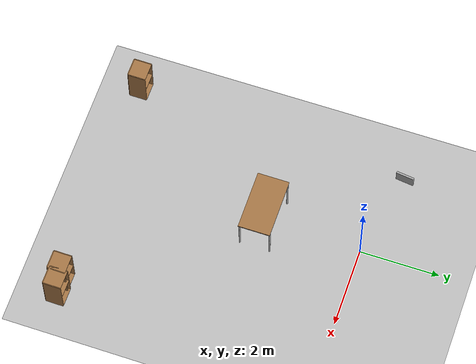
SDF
<sdf version="1.5">
 <world name="default">
  <model name="ground_plane">
   <static>1</static>
   <link name="link">
    <collision name="collision">
     <geometry><plane><normal>0 0 1</normal><size>100 100</size></plane></geometry>
     <surface><friction><ode><mu>100</mu><mu2>50</mu2></ode></friction></surface>
    </collision>
    <visual name="visual">
     <cast_shadows>0</cast_shadows>
     <geometry><plane><normal>0 0 1</normal><size>100 100</size></plane></geometry>
     <material>
      <script><uri>file://media/materials/scripts/gazebo.material</uri><name>Gazebo/Grey</name></script>
     </material>
    </visual>
    <velocity_decay><linear>0</linear><angular>0</angular></velocity_decay>
   </link>
  </model>
  <model name="table">
   <static>1</static>
   <link name="link">
    <collision name="surface">
     <pose>0 0 1 0 -0 0</pose>
     <geometry><box><size>1.5 0.8 0.03</size></box></geometry>
     <surface><friction><ode><mu>0.6</mu><mu2>0.6</mu2></ode></friction></surface>
    </collision>
    <visual name="visual1">
     <pose>0 0 1 0 -0 0</pose>
     <geometry><box><size>1.5 0.8 0.03</size></box></geometry>
     <material>
      <script><uri>file://media/materials/scripts/gazebo.material</uri><name>Gazebo/Wood</name></script>
     </material>
    </visual>
    <collision name="front_left_leg">
     <pose>0.68 0.38 0.5 0 -0 0</pose>
     <geometry><cylinder><radius>0.02</radius><length>1</length></cylinder></geometry>
    </collision>
    <visual name="front_left_leg">
     <pose>0.68 0.38 0.5 0 -0 0</pose>
     <geometry><cylinder><radius>0.02</radius><length>1</length></cylinder></geometry>
     <material>
      <script><uri>file://media/materials/scripts/gazebo.material</uri><name>Gazebo/Grey</name></script>
     </material>
    </visual>
    <collision name="front_right_leg">
     <pose>0.68 -0.38 0.5 0 -0 0</pose>
     <geometry><cylinder><radius>0.02</radius><length>1</length></cylinder></geometry>
    </collision>
    <visual name="front_right_leg">
     <pose>0.68 -0.38 0.5 0 -0 0</pose>
     <geometry><cylinder><radius>0.02</radius><length>1</length></cylinder></geometry>
     <material>
      <script><uri>file://media/materials/scripts/gazebo.material</uri><name>Gazebo/Grey</name></script>
     </material>
    </visual>
    <collision name="back_right_leg">
     <pose>-0.68 -0.38 0.5 0 -0 0</pose>
     <geometry><cylinder><radius>0.02</radius><length>1</length></cylinder></geometry>
    </collision>
    <visual name="back_right_leg">
     <pose>-0.68 -0.38 0.5 0 -0 0</pose>
     <geometry><cylinder><radius>0.02</radius><length>1</length></cylinder></geometry>
     <material>
      <script><uri>file://media/materials/scripts/gazebo.material</uri><name>Gazebo/Grey</name></script>
     </material>
    </visual>
    <collision name="back_left_leg">
     <pose>-0.68 0.38 0.5 0 -0 0</pose>
     <geometry><cylinder><radius>0.02</radius><length>1</length></cylinder></geometry>
    </collision>
    <visual name="back_left_leg">
     <pose>-0.68 0.38 0.5 0 -0 0</pose>
     <geometry><cylinder><radius>0.02</radius><length>1</length></cylinder></geometry>
     <material>
      <script><uri>file://media/materials/scripts/gazebo.material</uri><name>Gazebo/Grey</name></script>
     </material>
    </visual>
    <velocity_decay><linear>0</linear><angular>0</angular></velocity_decay>
   </link>
   <pose>0 -2.45745 0 0 -0 0</pose>
  </model>
  <model name="cabinet_clone_1">
   <static>1</static>
   <link name="cabinet_bottom_plate">
    <inertial>
     <pose>0 0 -1 0 -0 0</pose>
     <inertia><ixx>2.05</ixx><ixy>0</ixy><ixz>0</ixz><iyy>2.05</iyy><iyz>0</iyz><izz>2.05</izz></inertia>
     <mass>25</mass>
    </inertial>
    <collision name="cabinet_bottom_plate_geom">
     <pose>0 0 0.01 0 -0 0</pose>
     <geometry><box><size>0.45 0.45 0.02</size></box></geometry>
    </collision>
    <visual name="cabinet_bottom_plate_geom_visual">
     <pose>0 0 0.01 0 -0 0</pose>
     <geometry><box><size>0.45 0.45 0.02</size></box></geometry>
     <material>
      <script><uri>file://media/materials/scripts/gazebo.material</uri><name>Gazebo/Wood</name></script>
     </material>
    </visual>
    <collision name="cabinet_bottom_plate_geom_cabinet_back_plate">
     <pose>0.235 0 0.51 0 -0 0</pose>
     <geometry><box><size>0.02 0.45 1.02</size></box></geometry>
    </collision>
    <visual name="cabinet_bottom_plate_geom_cabinet_back_plate_visual">
     <pose>0.235 0 0.51 0 -0 0</pose>
     <geometry><box><size>0.02 0.45 1.02</size></box></geometry>
     <material>
      <script><uri>file://media/materials/scripts/gazebo.material</uri><name>Gazebo/Wood</name></script>
     </material>
    </visual>
    <collision name="cabinet_bottom_plate_geom_cabinet_left_plate">
     <pose>0 0.235 0.51 0 -0 0</pose>
     <geometry><box><size>0.45 0.02 1.02</size></box></geometry>
    </collision>
    <visual name="cabinet_bottom_plate_geom_cabinet_left_plate_visual">
     <pose>0 0.235 0.51 0 -0 0</pose>
     <geometry><box><size>0.45 0.02 1.02</size></box></geometry>
     <material>
      <script><uri>file://media/materials/scripts/gazebo.material</uri><name>Gazebo/Wood</name></script>
     </material>
    </visual>
    <collision name="cabinet_bottom_plate_geom_cabinet_middle_plate">
     <pose>0 0 0.51 0 -0 0</pose>
     <geometry><box><size>0.45 0.45 0.02</size></box></geometry>
    </collision>
    <visual name="cabinet_bottom_plate_geom_cabinet_middle_plate_visual">
     <pose>0 0 0.51 0 -0 0</pose>
     <geometry><box><size>0.45 0.45 0.02</size></box></geometry>
     <material>
      <script><uri>file://media/materials/scripts/gazebo.material</uri><name>Gazebo/Wood</name></script>
     </material>
    </visual>
    <collision name="cabinet_bottom_plate_geom_cabinet_right_plate">
     <pose>0 -0.235 0.51 0 -0 0</pose>
     <geometry><box><size>0.45 0.02 1.02</size></box></geometry>
    </collision>
    <visual name="cabinet_bottom_plate_geom_cabinet_right_plate_visual">
     <pose>0 -0.235 0.51 0 -0 0</pose>
     <geometry><box><size>0.45 0.02 1.02</size></box></geometry>
     <material>
      <script><uri>file://media/materials/scripts/gazebo.material</uri><name>Gazebo/Wood</name></script>
     </material>
    </visual>
    <collision name="cabinet_bottom_plate_geom_cabinet_top_plate">
     <pose>0 0 1.01 0 -0 0</pose>
     <geometry><box><size>0.45 0.45 0.02</size></box></geometry>
    </collision>
    <visual name="cabinet_bottom_plate_geom_cabinet_top_plate_visual">
     <pose>0 0 1.01 0 -0 0</pose>
     <geometry><box><size>0.45 0.45 0.02</size></box></geometry>
     <material>
      <script><uri>file://media/materials/scripts/gazebo.material</uri><name>Gazebo/Wood</name></script>
     </material>
    </visual>
    <velocity_decay><linear>0</linear><angular>0</angular></velocity_decay>
   </link>
   <pose>-2.53037 -6.53417 0 0 0 -1.57757</pose>
  </model>
  <model name="cabinet_clone_2">
   <static>1</static>
   <link name="cabinet_bottom_plate">
    <inertial>
     <pose>0 0 -1 0 -0 0</pose>
     <inertia><ixx>2.05</ixx><ixy>0</ixy><ixz>0</ixz><iyy>2.05</iyy><iyz>0</iyz><izz>2.05</izz></inertia>
     <mass>25</mass>
    </inertial>
    <collision name="cabinet_bottom_plate_geom">
     <pose>0 0 0.01 0 -0 0</pose>
     <geometry><box><size>0.45 0.45 0.02</size></box></geometry>
    </collision>
    <visual name="cabinet_bottom_plate_geom_visual">
     <pose>0 0 0.01 0 -0 0</pose>
     <geometry><box><size>0.45 0.45 0.02</size></box></geometry>
     <material>
      <script><uri>file://media/materials/scripts/gazebo.material</uri><name>Gazebo/Wood</name></script>
     </material>
    </visual>
    <collision name="cabinet_bottom_plate_geom_cabinet_back_plate">
     <pose>0.235 0 0.51 0 -0 0</pose>
     <geometry><box><size>0.02 0.45 1.02</size></box></geometry>
    </collision>
    <visual name="cabinet_bottom_plate_geom_cabinet_back_plate_visual">
     <pose>0.235 0 0.51 0 -0 0</pose>
     <geometry><box><size>0.02 0.45 1.02</size></box></geometry>
     <material>
      <script><uri>file://media/materials/scripts/gazebo.material</uri><name>Gazebo/Wood</name></script>
     </material>
    </visual>
    <collision name="cabinet_bottom_plate_geom_cabinet_left_plate">
     <pose>0 0.235 0.51 0 -0 0</pose>
     <geometry><box><size>0.45 0.02 1.02</size></box></geometry>
    </collision>
    <visual name="cabinet_bottom_plate_geom_cabinet_left_plate_visual">
     <pose>0 0.235 0.51 0 -0 0</pose>
     <geometry><box><size>0.45 0.02 1.02</size></box></geometry>
     <material>
      <script><uri>file://media/materials/scripts/gazebo.material</uri><name>Gazebo/Wood</name></script>
     </material>
    </visual>
    <collision name="cabinet_bottom_plate_geom_cabinet_middle_plate">
     <pose>0 0 0.51 0 -0 0</pose>
     <geometry><box><size>0.45 0.45 0.02</size></box></geometry>
    </collision>
    <visual name="cabinet_bottom_plate_geom_cabinet_middle_plate_visual">
     <pose>0 0 0.51 0 -0 0</pose>
     <geometry><box><size>0.45 0.45 0.02</size></box></geometry>
     <material>
      <script><uri>file://media/materials/scripts/gazebo.material</uri><name>Gazebo/Wood</name></script>
     </material>
    </visual>
    <collision name="cabinet_bottom_plate_geom_cabinet_right_plate">
     <pose>0 -0.235 0.51 0 -0 0</pose>
     <geometry><box><size>0.45 0.02 1.02</size></box></geometry>
    </collision>
    <visual name="cabinet_bottom_plate_geom_cabinet_right_plate_visual">
     <pose>0 -0.235 0.51 0 -0 0</pose>
     <geometry><box><size>0.45 0.02 1.02</size></box></geometry>
     <material>
      <script><uri>file://media/materials/scripts/gazebo.material</uri><name>Gazebo/Wood</name></script>
     </material>
    </visual>
    <collision name="cabinet_bottom_plate_geom_cabinet_top_plate">
     <pose>0 0 1.01 0 -0 0</pose>
     <geometry><box><size>0.45 0.45 0.02</size></box></geometry>
    </collision>
    <visual name="cabinet_bottom_plate_geom_cabinet_top_plate_visual">
     <pose>0 0 1.01 0 -0 0</pose>
     <geometry><box><size>0.45 0.45 0.02</size></box></geometry>
     <material>
      <script><uri>file://media/materials/scripts/gazebo.material</uri><name>Gazebo/Wood</name></script>
     </material>
    </visual>
    <velocity_decay><linear>0</linear><angular>0</angular></velocity_decay>
   </link>
   <pose>3.4022 -6.50655 0 0 0 -1.57757</pose>
  </model>
  <model name="cabinet_clone_3">
   <static>1</static>
   <link name="cabinet_bottom_plate">
    <inertial>
     <pose>0 0 -1 0 -0 0</pose>
     <inertia><ixx>2.05</ixx><ixy>0</ixy><ixz>0</ixz><iyy>2.05</iyy><iyz>0</iyz><izz>2.05</izz></inertia>
     <mass>25</mass>
    </inertial>
    <collision name="cabinet_bottom_plate_geom">
     <pose>0 0 0.01 0 -0 0</pose>
     <geometry><box><size>0.45 0.45 0.02</size></box></geometry>
    </collision>
    <visual name="cabinet_bottom_plate_geom_visual">
     <pose>0 0 0.01 0 -0 0</pose>
     <geometry><box><size>0.45 0.45 0.02</size></box></geometry>
     <material>
      <script><uri>file://media/materials/scripts/gazebo.material</uri><name>Gazebo/Wood</name></script>
     </material>
    </visual>
    <collision name="cabinet_bottom_plate_geom_cabinet_back_plate">
     <pose>0.235 0 0.51 0 -0 0</pose>
     <geometry><box><size>0.02 0.45 1.02</size></box></geometry>
    </collision>
    <visual name="cabinet_bottom_plate_geom_cabinet_back_plate_visual">
     <pose>0.235 0 0.51 0 -0 0</pose>
     <geometry><box><size>0.02 0.45 1.02</size></box></geometry>
     <material>
      <script><uri>file://media/materials/scripts/gazebo.material</uri><name>Gazebo/Wood</name></script>
     </material>
    </visual>
    <collision name="cabinet_bottom_plate_geom_cabinet_left_plate">
     <pose>0 0.235 0.51 0 -0 0</pose>
     <geometry><box><size>0.45 0.02 1.02</size></box></geometry>
    </collision>
    <visual name="cabinet_bottom_plate_geom_cabinet_left_plate_visual">
     <pose>0 0.235 0.51 0 -0 0</pose>
     <geometry><box><size>0.45 0.02 1.02</size></box></geometry>
     <material>
      <script><uri>file://media/materials/scripts/gazebo.material</uri><name>Gazebo/Wood</name></script>
     </material>
    </visual>
    <collision name="cabinet_bottom_plate_geom_cabinet_middle_plate">
     <pose>0 0 0.51 0 -0 0</pose>
     <geometry><box><size>0.45 0.45 0.02</size></box></geometry>
    </collision>
    <visual name="cabinet_bottom_plate_geom_cabinet_middle_plate_visual">
     <pose>0 0 0.51 0 -0 0</pose>
     <geometry><box><size>0.45 0.45 0.02</size></box></geometry>
     <material>
      <script><uri>file://media/materials/scripts/gazebo.material</uri><name>Gazebo/Wood</name></script>
     </material>
    </visual>
    <collision name="cabinet_bottom_plate_geom_cabinet_right_plate">
     <pose>0 -0.235 0.51 0 -0 0</pose>
     <geometry><box><size>0.45 0.02 1.02</size></box></geometry>
    </collision>
    <visual name="cabinet_bottom_plate_geom_cabinet_right_plate_visual">
     <pose>0 -0.235 0.51 0 -0 0</pose>
     <geometry><box><size>0.45 0.02 1.02</size></box></geometry>
     <material>
      <script><uri>file://media/materials/scripts/gazebo.material</uri><name>Gazebo/Wood</name></script>
     </material>
    </visual>
    <collision name="cabinet_bottom_plate_geom_cabinet_top_plate">
     <pose>0 0 1.01 0 -0 0</pose>
     <geometry><box><size>0.45 0.45 0.02</size></box></geometry>
    </collision>
    <visual name="cabinet_bottom_plate_geom_cabinet_top_plate_visual">
     <pose>0 0 1.01 0 -0 0</pose>
     <geometry><box><size>0.45 0.45 0.02</size></box></geometry>
     <material>
      <script><uri>file://media/materials/scripts/gazebo.material</uri><name>Gazebo/Wood</name></script>
     </material>
    </visual>
    <velocity_decay><linear>0</linear><angular>0</angular></velocity_decay>
   </link>
   <pose>3 -6.55035 0 0 0 -1.57757</pose>
  </model>
  <model name="checkerboard1">
   <static>1</static>
   <link name="square_01">
    <visual name="visual">
     <geometry><box><size>0.35 0.45 0.05</size></box></geometry>
     <material>
      <script><uri>model://checkerboard_textured_1</uri><name>Checkerboard/Diffuse</name></script>
     </material>
    </visual>
    <velocity_decay><linear>0</linear><angular>0</angular></velocity_decay>
   </link>
   <pose>-1.71791 0.552604 1.06987 -3.14159 1.51702 3.02161</pose>
  </model>
 </world>
</sdf>
